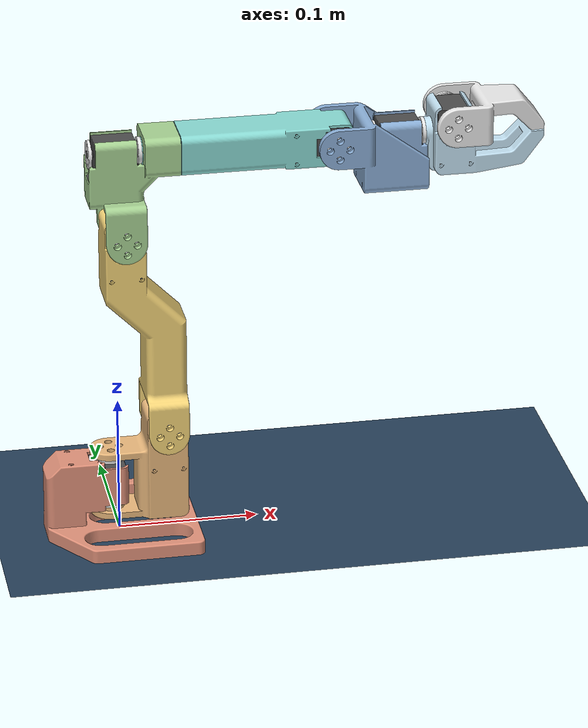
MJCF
<mujoco model="scene">
    <include file="okay_robot.xml" />

    <visual>
        <headlight diffuse="0.6 0.6 0.6" ambient="0.3 0.3 0.3" specular="0 0 0" />
        <rgba haze="0.15 0.25 0.35 1" />
        <global azimuth="160" elevation="-20" />
    </visual>

    <asset>
        <texture type="skybox" builtin="gradient" rgb1="0.3 0.5 0.7" rgb2="0 0 0" width="512"
            height="3072" />
        <texture type="2d" name="groundplane" builtin="checker" mark="edge" rgb1="0.2 0.3 0.4"
            rgb2="0.1 0.2 0.3"
            markrgb="0.8 0.8 0.8" width="300" height="300" />
        <material name="groundplane" texture="groundplane" texuniform="true" texrepeat="5 5"
            reflectance="0.2" />
    </asset>

    <worldbody>
        <light pos="0 0 3.5" dir="0 0 -1" directional="true" />
        <geom name="floor" size="0 0 0.05" pos="0 0 0" type="plane" material="groundplane" />
    </worldbody>
</mujoco>

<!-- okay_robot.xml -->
<!-- Generated using onshape-to-robot -->
<!-- Onshape https://cad.onshape.com/documents/1a88437c85175db425541dec/w/f09085f8d805c32bea80c0e5/e/94d6a624cf8efc45b89135d2 -->
<mujoco model="okay_robot">
  <compiler angle="radian" meshdir="./assets" autolimits="true"/>
  <default>
    <default class="okay_robot">
      <joint frictionloss="0.1" armature="0.005"/>
      <position kp="50" dampratio="1"/>
      <default class="visual">
        <geom type="mesh" contype="0" conaffinity="0" group="2"/>
      </default>
      <default class="collision">
        <geom group="3"/>
      </default>
    </default>
  </default>
  <worldbody>
    <!-- Link base_link -->
    <body name="base_link" pos="0 0 0" quat="1 0 0 0" childclass="okay_robot">
      <inertial pos="0 0 0" mass="1e-09" fullinertia="1e-09 1e-09 1e-09 0 0 0"/>
      <!-- Part base_link -->
      <geom type="mesh" class="visual" pos="-0.00651548 2.25514e-17 0.0391" quat="1 0 0 0" mesh="base_link" material="base_link_material"/>
      <!-- Part splined_servo_horn -->
      <geom type="mesh" class="visual" pos="-0.00651548 2.25514e-17 0.0553" quat="0 1 0 0" mesh="splined_servo_horn" material="splined_servo_horn_material"/>
      <!-- Part servo_body -->
      <geom type="mesh" class="visual" pos="-0.0190155 2.25514e-17 0.0535" quat="1 0 0 0" mesh="servo_body" material="servo_body_material"/>
      <!-- Part free_servo_horn -->
      <geom type="mesh" class="visual" pos="-0.00651548 2.25514e-17 0.0225" quat="1 0 0 0" mesh="free_servo_horn" material="free_servo_horn_material"/>
      <!-- Link link1 -->
      <body name="link1" pos="-0.00651548 2.25514e-17 0.0391" quat="1 0 0 0">
        <!-- Joint from base_link to link1 -->
        <joint axis="0 0 1" name="joint1" type="hinge" range="-1.5707963267948966 1.5707963267948966"/>
        <inertial pos="0 0 0" mass="1e-09" fullinertia="1e-09 1e-09 1e-09 0 0 0"/>
        <!-- Part link1 -->
        <geom type="mesh" class="visual" pos="0.02 0 0" quat="1 0 0 0" mesh="link1" material="link1_material"/>
        <geom type="mesh" class="collision" pos="0.02 0 0" quat="1 0 0 0" mesh="link1" material="link1_material"/>
        <!-- Part splined_servo_horn_2 -->
        <geom type="mesh" class="visual" pos="0.04 -0.0162 0.042" quat="0.707107 -0.707107 0 0" mesh="splined_servo_horn" material="splined_servo_horn_material"/>
        <!-- Part servo_body_2 -->
        <geom type="mesh" class="visual" pos="0.04 -0.0144 0.0295" quat="0.5 0.5 -0.5 0.5" mesh="servo_body" material="servo_body_material"/>
        <!-- Part free_servo_horn_2 -->
        <geom type="mesh" class="visual" pos="0.04 0.0166 0.042" quat="0.707107 0.707107 -0 -0" mesh="free_servo_horn" material="free_servo_horn_material"/>
        <!-- Link link2 -->
        <body name="link2" pos="0.04 0 0.042" quat="0.5 0.5 -0.5 0.5">
          <!-- Joint from link1 to link2 -->
          <joint axis="0 0 1" name="joint2" type="hinge" range="-1.5707963267948966 1.5707963267948966"/>
          <inertial pos="0 0 0" mass="1e-09" fullinertia="1e-09 1e-09 1e-09 0 0 0"/>
          <!-- Part link2 -->
          <geom type="mesh" class="visual" pos="0.075 0 -2.1684e-19" quat="0 0 -0.707107 0.707107" mesh="link2" material="link2_material"/>
          <geom type="mesh" class="collision" pos="0.075 0 -2.1684e-19" quat="0 0 -0.707107 0.707107" mesh="link2" material="link2_material"/>
          <!-- Part splined_servo_horn_3 -->
          <geom type="mesh" class="visual" pos="0.15 0.028 0.0162" quat="0 -0.707107 0.707107 0" mesh="splined_servo_horn" material="splined_servo_horn_material"/>
          <!-- Part servo_body_3 -->
          <geom type="mesh" class="visual" pos="0.1375 0.028 0.0144" quat="1 0 0 0" mesh="servo_body" material="servo_body_material"/>
          <!-- Part free_servo_horn_3 -->
          <geom type="mesh" class="visual" pos="0.15 0.028 -0.0166" quat="0.707107 0 0 -0.707107" mesh="free_servo_horn" material="free_servo_horn_material"/>
          <!-- Link link3 -->
          <body name="link3" pos="0.15 0.028 -6.50521e-19" quat="1 0 0 0">
            <!-- Joint from link2 to link3 -->
            <joint axis="0 0 1" name="joint3" type="hinge" range="-1.5707963267948966 1.5707963267948966"/>
            <inertial pos="0 0 0" mass="1e-09" fullinertia="1e-09 1e-09 1e-09 0 0 0"/>
            <!-- Part link3 -->
            <geom type="mesh" class="visual" pos="0.06 -0.0075 1.30104e-18" quat="0.5 -0.5 0.5 -0.5" mesh="link3" material="link3_material"/>
            <geom type="mesh" class="collision" pos="0.06 -0.0075 1.30104e-18" quat="0.5 -0.5 0.5 -0.5" mesh="link3" material="link3_material"/>
            <!-- Part splined_servo_horn_4 -->
            <geom type="mesh" class="visual" pos="0.06 -0.0112 1.75613e-18" quat="5.54008e-17 6.13317e-17 -0.707107 -0.707107" mesh="splined_servo_horn" material="splined_servo_horn_material"/>
            <!-- Part servo_body_4 -->
            <geom type="mesh" class="visual" pos="0.0475 -0.0094 1.44694e-18" quat="0.707107 0.707107 -0 -0" mesh="servo_body" material="servo_body_material"/>
            <!-- Part free_servo_horn_4 -->
            <geom type="mesh" class="visual" pos="0.06 0.0216 -3.56024e-18" quat="6.03523e-18 -6.13317e-17 -0.707107 0.707107" mesh="free_servo_horn" material="free_servo_horn_material"/>
            <!-- Link link4a -->
            <body name="link4a" pos="0.06 0.005 -8.67362e-19" quat="0.707107 0.707107 -0 -8.53591e-111">
              <!-- Joint from link3 to link4a -->
              <joint axis="0 0 1" name="joint4" type="hinge" range="-3.141592653589793 3.141592653589793"/>
              <inertial pos="0 0 0" mass="1e-09" fullinertia="1e-09 1e-09 1e-09 0 0 0"/>
              <!-- Part link4a -->
              <geom type="mesh" class="visual" pos="0 0 0.0775" quat="1.54597e-173 -0.707107 0 -0.707107" mesh="link4a" material="link4a_material"/>
              <geom type="mesh" class="collision" pos="0 0 0.0775" quat="1.54597e-173 -0.707107 0 -0.707107" mesh="link4a" material="link4a_material"/>
              <!-- Part link4b -->
              <geom type="mesh" class="visual" pos="0 -7.37257e-18 0.0775" quat="1.54597e-173 -0.707107 0 -0.707107" mesh="link4b" material="link4b_material"/>
              <geom type="mesh" class="collision" pos="0 -7.37257e-18 0.0775" quat="1.54597e-173 -0.707107 0 -0.707107" mesh="link4b" material="link4b_material"/>
              <!-- Part splined_servo_horn_5 -->
              <geom type="mesh" class="visual" pos="0 0.0162 0.155" quat="0.5 0.5 -0.5 0.5" mesh="splined_servo_horn" material="splined_servo_horn_material"/>
              <!-- Part servo_body_5 -->
              <geom type="mesh" class="visual" pos="0 0.0144 0.1425" quat="0.5 -0.5 -0.5 -0.5" mesh="servo_body" material="servo_body_material"/>
              <!-- Part free_servo_horn_5 -->
              <geom type="mesh" class="visual" pos="0 -0.0166 0.155" quat="0.5 -0.5 -0.5 -0.5" mesh="free_servo_horn" material="free_servo_horn_material"/>
              <!-- Link link5 -->
              <body name="link5" pos="0 -7.37257e-18 0.155" quat="0.5 -0.5 -0.5 -0.5">
                <!-- Joint from link4a to link5 -->
                <joint axis="0 0 1" name="joint5" type="hinge" range="-1.5707963267948948 1.5707963267948983"/>
                <inertial pos="0 0 0" mass="1e-09" fullinertia="1e-09 1e-09 1e-09 0 0 0"/>
                <!-- Part link5 -->
                <geom type="mesh" class="visual" pos="0.023 0 1.0842e-19" quat="0.707107 -0.707107 0 4.23344e-49" mesh="link5" material="link5_material"/>
                <geom type="mesh" class="collision" pos="0.023 0 1.0842e-19" quat="0.707107 -0.707107 0 4.23344e-49" mesh="link5" material="link5_material"/>
                <!-- Part splined_servo_horn_6 -->
                <geom type="mesh" class="visual" pos="0.0622 0 2.73191e-18" quat="0.5 0.5 -0.5 -0.5" mesh="splined_servo_horn" material="splined_servo_horn_material"/>
                <!-- Part servo_body_6 -->
                <geom type="mesh" class="visual" pos="0.0604 -0.0125 2.42273e-18" quat="0.5 0.5 0.5 0.5" mesh="servo_body" material="servo_body_material"/>
                <!-- Part free_servo_horn_6 -->
                <geom type="mesh" class="visual" pos="0.0294 0 -2.58446e-18" quat="0.5 -0.5 0.5 -0.5" mesh="free_servo_horn" material="free_servo_horn_material"/>
                <!-- Link link6 -->
                <body name="link6" pos="0.046 0 1.0842e-19" quat="0.5 0.5 0.5 0.5">
                  <!-- Joint from link5 to link6 -->
                  <joint axis="0 0 1" name="joint6" type="hinge" range="-3.141592653589793 3.141592653589793"/>
                  <inertial pos="0 0 0" mass="1e-09" fullinertia="1e-09 1e-09 1e-09 0 0 0"/>
                  <!-- Part link6 -->
                  <geom type="mesh" class="visual" pos="0 0 0.019" quat="5.90414e-48 0.707107 0 0.707107" mesh="link6" material="link6_material"/>
                  <geom type="mesh" class="collision" pos="0 0 0.019" quat="5.90414e-48 0.707107 0 0.707107" mesh="link6" material="link6_material"/>
                  <!-- Part splined_servo_horn_7 -->
                  <geom type="mesh" class="visual" pos="0.01 0.0162 0.038" quat="0.5 0.5 -0.5 0.5" mesh="splined_servo_horn" material="splined_servo_horn_material"/>
                  <!-- Part servo_body_7 -->
                  <geom type="mesh" class="visual" pos="-0.0025 0.0144 0.038" quat="0.707107 -0.707107 -0 -2.72368e-32" mesh="servo_body" material="servo_body_material"/>
                  <!-- Part free_servo_horn_7 -->
                  <geom type="mesh" class="visual" pos="0.01 -0.0166 0.038" quat="0.5 -0.5 -0.5 -0.5" mesh="free_servo_horn" material="free_servo_horn_material"/>
                  <!-- Link finger_link -->
                  <body name="finger_link" pos="0.01 -6.50521e-20 0.038" quat="0.707107 -0.707107 0 -3.50542e-32">
                    <!-- Joint from link6 to finger_link -->
                    <joint axis="0 0 1" name="joint7" type="hinge" range="0.0 1.5707963267948966"/>
                    <inertial pos="0 0 0" mass="1e-09" fullinertia="1e-09 1e-09 1e-09 0 0 0"/>
                    <!-- Part finger_link -->
                    <geom type="mesh" class="visual" pos="0 0 0.000504912" quat="0.5 -0.5 0.5 -0.5" mesh="finger_link" material="finger_link_material"/>
                    <geom type="mesh" class="collision" pos="0 0 0.000504912" quat="0.5 -0.5 0.5 -0.5" mesh="finger_link" material="finger_link_material"/>
                  </body>
                </body>
              </body>
            </body>
          </body>
        </body>
      </body>
    </body>
  </worldbody>
  <asset>
    <mesh file="link4b.stl"/>
    <mesh file="servo_body.stl"/>
    <mesh file="link3.stl"/>
    <mesh file="link6.stl"/>
    <mesh file="finger_link.stl"/>
    <mesh file="link2.stl"/>
    <mesh file="base_link.stl"/>
    <mesh file="link5.stl"/>
    <mesh file="link1.stl"/>
    <mesh file="free_servo_horn.stl"/>
    <mesh file="splined_servo_horn.stl"/>
    <mesh file="link4a.stl"/>
    <material name="base_link_material" rgba="0.882353 0.572549 0.478431 1"/>
    <material name="splined_servo_horn_material" rgba="0.901961 0.901961 0.901961 1"/>
    <material name="servo_body_material" rgba="0.301961 0.301961 0.301961 1"/>
    <material name="free_servo_horn_material" rgba="0.901961 0.901961 0.901961 1"/>
    <material name="link1_material" rgba="0.917647 0.72549 0.490196 1"/>
    <material name="link2_material" rgba="0.960784 0.835294 0.470588 1"/>
    <material name="link3_material" rgba="0.654902 0.823529 0.576471 1"/>
    <material name="link4a_material" rgba="0.537255 0.854902 0.827451 1"/>
    <material name="link4b_material" rgba="0.537255 0.854902 0.827451 1"/>
    <material name="link5_material" rgba="0.541176 0.682353 0.839216 1"/>
    <material name="link6_material" rgba="0.768627 0.886275 0.952941 1"/>
    <material name="finger_link_material" rgba="0.917647 0.917647 0.917647 1"/>
  </asset>
  <actuator>
    <position class="okay_robot" name="joint1" joint="joint1" inheritrange="1"/>
    <position class="okay_robot" name="joint2" joint="joint2" inheritrange="1"/>
    <position class="okay_robot" name="joint3" joint="joint3" inheritrange="1"/>
    <position class="okay_robot" name="joint4" joint="joint4" inheritrange="1"/>
    <position class="okay_robot" name="joint5" joint="joint5" inheritrange="1"/>
    <position class="okay_robot" name="joint6" joint="joint6" inheritrange="1"/>
    <position class="okay_robot" name="joint7" joint="joint7" inheritrange="1"/>
  </actuator>
  <equality/>
</mujoco>
